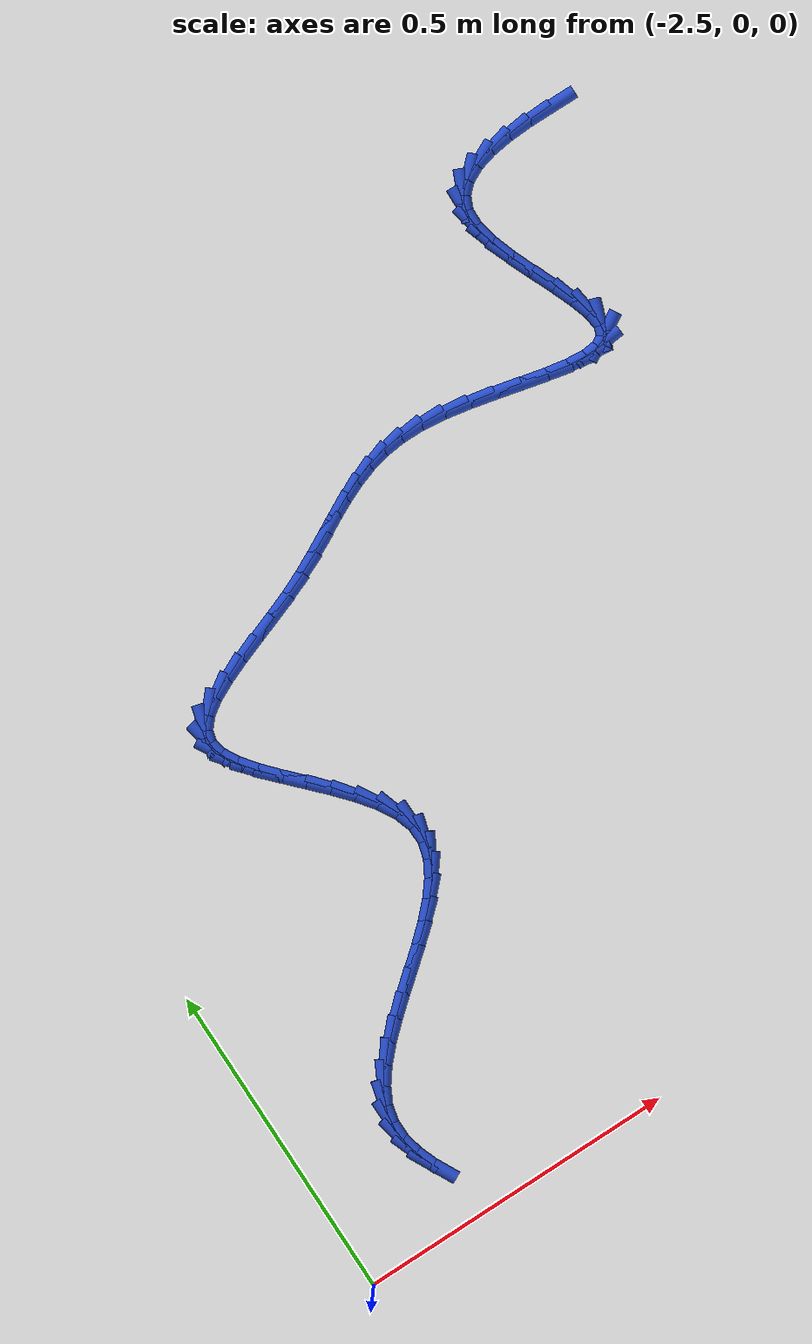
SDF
<sdf version="1.6">
 <world name="default">
  <model name="ground_plane">
   <static>1</static>
   <link name="link">
    <collision name="collision">
     <geometry><plane><normal>0 0 1</normal><size>100 100</size></plane></geometry>
     <surface><friction><ode><mu>100</mu><mu2>50</mu2></ode></friction></surface>
    </collision>
    <visual name="visual">
     <cast_shadows>0</cast_shadows>
     <geometry><plane><normal>0 0 1</normal><size>100 100</size></plane></geometry>
     <material>
      <script><uri>file://media/materials/scripts/gazebo.material</uri><name>Gazebo/WhiteGlow</name></script>
     </material>
    </visual>
   </link>
  </model>
  <model name="line">
   <link name="link_75">
    <pose>-1.3373898051731816 1.3048391775590995 0.01 0 1.57 -0.01315797995251754</pose>
    <collision name="collision">
     <geometry><cylinder><radius>0.01</radius><length>0.08</length></cylinder></geometry>
    </collision>
    <visual name="visual">
     <material>
      <script><name>Gazebo/Blue</name><uri>file://media/materials/scripts/gazebo.material</uri></script>
     </material>
     <geometry><cylinder><radius>0.01</radius><length>0.08</length></cylinder></geometry>
    </visual>
   </link>
   <link name="link_76">
    <pose>-1.3767139139469038 1.305356633257128 0.01 0 1.57 0.04234224604674094</pose>
    <collision name="collision">
     <geometry><cylinder><radius>0.01</radius><length>0.08</length></cylinder></geometry>
    </collision>
    <visual name="visual">
     <material>
      <script><name>Gazebo/Blue</name><uri>file://media/materials/scripts/gazebo.material</uri></script>
     </material>
     <geometry><cylinder><radius>0.01</radius><length>0.08</length></cylinder></geometry>
    </visual>
   </link>
   <link name="link_77">
    <pose>-1.413560351946312 1.3037955392578684 0.01 0 1.57 0.12639140691439146</pose>
    <collision name="collision">
     <geometry><cylinder><radius>0.01</radius><length>0.08</length></cylinder></geometry>
    </collision>
    <visual name="visual">
     <material>
      <script><name>Gazebo/Blue</name><uri>file://media/materials/scripts/gazebo.material</uri></script>
     </material>
     <geometry><cylinder><radius>0.01</radius><length>0.08</length></cylinder></geometry>
    </visual>
   </link>
   <link name="link_78">
    <pose>-1.4469092285463092 1.2995579388350074 0.01 0 1.57 0.25488432973484554</pose>
    <collision name="collision">
     <geometry><cylinder><radius>0.01</radius><length>0.08</length></cylinder></geometry>
    </collision>
    <visual name="visual">
     <material>
      <script><name>Gazebo/Blue</name><uri>file://media/materials/scripts/gazebo.material</uri></script>
     </material>
     <geometry><cylinder><radius>0.01</radius><length>0.08</length></cylinder></geometry>
    </visual>
   </link>
   <link name="link_79">
    <pose>-1.4757406531217967 1.2920458752622328 0.01 0 1.57 0.454589877610765</pose>
    <collision name="collision">
     <geometry><cylinder><radius>0.01</radius><length>0.08</length></cylinder></geometry>
    </collision>
    <visual name="visual">
     <material>
      <script><name>Gazebo/Blue</name><uri>file://media/materials/scripts/gazebo.material</uri></script>
     </material>
     <geometry><cylinder><radius>0.01</radius><length>0.08</length></cylinder></geometry>
    </visual>
   </link>
   <link name="link_80">
    <pose>-1.499034735047679 1.2806613918132324 0.01 0 1.57 0.7583430188637666</pose>
    <collision name="collision">
     <geometry><cylinder><radius>0.01</radius><length>0.08</length></cylinder></geometry>
    </collision>
    <visual name="visual">
     <material>
      <script><name>Gazebo/Blue</name><uri>file://media/materials/scripts/gazebo.material</uri></script>
     </material>
     <geometry><cylinder><radius>0.01</radius><length>0.08</length></cylinder></geometry>
    </visual>
   </link>
   <link name="link_81">
    <pose>-1.515771583698859 1.2648065317616932 0.01 0 1.57 1.1581521301465278</pose>
    <collision name="collision">
     <geometry><cylinder><radius>0.01</radius><length>0.08</length></cylinder></geometry>
    </collision>
    <visual name="visual">
     <material>
      <script><name>Gazebo/Blue</name><uri>file://media/materials/scripts/gazebo.material</uri></script>
     </material>
     <geometry><cylinder><radius>0.01</radius><length>0.08</length></cylinder></geometry>
    </visual>
   </link>
   <link name="link_82">
    <pose>-1.5249313084502394 1.243883338381302 0.01 0 1.57 1.5434661027120598</pose>
    <collision name="collision">
     <geometry><cylinder><radius>0.01</radius><length>0.08</length></cylinder></geometry>
    </collision>
    <visual name="visual">
     <material>
      <script><name>Gazebo/Blue</name><uri>file://media/materials/scripts/gazebo.material</uri></script>
     </material>
     <geometry><cylinder><radius>0.01</radius><length>0.08</length></cylinder></geometry>
    </visual>
   </link>
   <link name="link_83">
    <pose>-1.5256550989267372 1.2174067805711528 0.01 0 1.57 -1.3600200276536794</pose>
    <collision name="collision">
     <geometry><cylinder><radius>0.01</radius><length>0.08</length></cylinder></geometry>
    </collision>
    <visual name="visual">
     <material>
      <script><name>Gazebo/Blue</name><uri>file://media/materials/scripts/gazebo.material</uri></script>
     </material>
     <geometry><cylinder><radius>0.01</radius><length>0.08</length></cylinder></geometry>
    </visual>
   </link>
   <link name="link_84">
    <pose>-1.5189832409724269 1.1862231923619113 0.01 0 1.57 -1.2386243153492944</pose>
    <collision name="collision">
     <geometry><cylinder><radius>0.01</radius><length>0.08</length></cylinder></geometry>
    </collision>
    <visual name="visual">
     <material>
      <script><name>Gazebo/Blue</name><uri>file://media/materials/scripts/gazebo.material</uri></script>
     </material>
     <geometry><cylinder><radius>0.01</radius><length>0.08</length></cylinder></geometry>
    </visual>
   </link>
   <link name="link_85">
    <pose>-1.5071939640866625 1.1520467706133433 0.01 0 1.57 -1.179845868983129</pose>
    <collision name="collision">
     <geometry><cylinder><radius>0.01</radius><length>0.08</length></cylinder></geometry>
    </collision>
    <visual name="visual">
     <material>
      <script><name>Gazebo/Blue</name><uri>file://media/materials/scripts/gazebo.material</uri></script>
     </material>
     <geometry><cylinder><radius>0.01</radius><length>0.08</length></cylinder></geometry>
    </visual>
   </link>
   <link name="link_86">
    <pose>-1.4925867092561826 1.1166065825400753 0.01 0 1.57 -1.16261070078067</pose>
    <collision name="collision">
     <geometry><cylinder><radius>0.01</radius><length>0.08</length></cylinder></geometry>
    </collision>
    <visual name="visual">
     <material>
      <script><name>Gazebo/Blue</name><uri>file://media/materials/scripts/gazebo.material</uri></script>
     </material>
     <geometry><cylinder><radius>0.01</radius><length>0.08</length></cylinder></geometry>
    </visual>
   </link>
   <link name="link_87">
    <pose>-1.4774609174677245 1.0816316953567322 0.01 0 1.57 -1.1841858953278552</pose>
    <collision name="collision">
     <geometry><cylinder><radius>0.01</radius><length>0.08</length></cylinder></geometry>
    </collision>
    <visual name="visual">
     <material>
      <script><name>Gazebo/Blue</name><uri>file://media/materials/scripts/gazebo.material</uri></script>
     </material>
     <geometry><cylinder><radius>0.01</radius><length>0.08</length></cylinder></geometry>
    </visual>
   </link>
   <link name="link_88">
    <pose>-1.4641160297080256 1.0488511762779409 0.01 0 1.57 -1.2601419592809815</pose>
    <collision name="collision">
     <geometry><cylinder><radius>0.01</radius><length>0.08</length></cylinder></geometry>
    </collision>
    <visual name="visual">
     <material>
      <script><name>Gazebo/Blue</name><uri>file://media/materials/scripts/gazebo.material</uri></script>
     </material>
     <geometry><cylinder><radius>0.01</radius><length>0.08</length></cylinder></geometry>
    </visual>
   </link>
   <link name="link_89">
    <pose>-1.4548514869638234 1.0199940925183257 0.01 0 1.57 -1.4471124882371735</pose>
    <collision name="collision">
     <geometry><cylinder><radius>0.01</radius><length>0.08</length></cylinder></geometry>
    </collision>
    <visual name="visual">
     <material>
      <script><name>Gazebo/Blue</name><uri>file://media/materials/scripts/gazebo.material</uri></script>
     </material>
     <geometry><cylinder><radius>0.01</radius><length>0.08</length></cylinder></geometry>
    </visual>
   </link>
   <link name="link_90">
    <pose>-1.4519667302218549 0.9967895112925125 0.01 0 1.57 1.225573483149632</pose>
    <collision name="collision">
     <geometry><cylinder><radius>0.01</radius><length>0.08</length></cylinder></geometry>
    </collision>
    <visual name="visual">
     <material>
      <script><name>Gazebo/Blue</name><uri>file://media/materials/scripts/gazebo.material</uri></script>
     </material>
     <geometry><cylinder><radius>0.01</radius><length>0.08</length></cylinder></geometry>
    </visual>
   </link>
   <link name="link_91">
    <pose>-1.4576809671862658 0.9809000433505993 0.01 0 1.57 0.5170347029312008</pose>
    <collision name="collision">
     <geometry><cylinder><radius>0.01</radius><length>0.08</length></cylinder></geometry>
    </collision>
    <visual name="visual">
     <material>
      <script><name>Gazebo/Blue</name><uri>file://media/materials/scripts/gazebo.material</uri></script>
     </material>
     <geometry><cylinder><radius>0.01</radius><length>0.08</length></cylinder></geometry>
    </visual>
   </link>
   <link name="link_92">
    <pose>-1.4724315485109156 0.9725124042028388 0.01 0 1.57 0.09520201269867072</pose>
    <collision name="collision">
     <geometry><cylinder><radius>0.01</radius><length>0.08</length></cylinder></geometry>
    </collision>
    <visual name="visual">
     <material>
      <script><name>Gazebo/Blue</name><uri>file://media/materials/scripts/gazebo.material</uri></script>
     </material>
     <geometry><cylinder><radius>0.01</radius><length>0.08</length></cylinder></geometry>
    </visual>
   </link>
   <link name="link_93">
    <pose>-1.4949085520183283 0.9703660598991153 0.01 0 1.57 -0.09594571729624421</pose>
    <collision name="collision">
     <geometry><cylinder><radius>0.01</radius><length>0.08</length></cylinder></geometry>
    </collision>
    <visual name="visual">
     <material>
      <script><name>Gazebo/Blue</name><uri>file://media/materials/scripts/gazebo.material</uri></script>
     </material>
     <geometry><cylinder><radius>0.01</radius><length>0.08</length></cylinder></geometry>
    </visual>
   </link>
   <link name="link_94">
    <pose>-1.5237287399252064 0.9731397498706305 0.01 0 1.57 -0.18645412499702016</pose>
    <collision name="collision">
     <geometry><cylinder><radius>0.01</radius><length>0.08</length></cylinder></geometry>
    </collision>
    <visual name="visual">
     <material>
      <script><name>Gazebo/Blue</name><uri>file://media/materials/scripts/gazebo.material</uri></script>
     </material>
     <geometry><cylinder><radius>0.01</radius><length>0.08</length></cylinder></geometry>
    </visual>
   </link>
   <link name="link_95">
    <pose>-1.5575088744482528 0.9795122135485858 0.01 0 1.57 -0.2275400065699741</pose>
    <collision name="collision">
     <geometry><cylinder><radius>0.01</radius><length>0.08</length></cylinder></geometry>
    </collision>
    <visual name="visual">
     <material>
      <script><name>Gazebo/Blue</name><uri>file://media/materials/scripts/gazebo.material</uri></script>
     </material>
     <geometry><cylinder><radius>0.01</radius><length>0.08</length></cylinder></geometry>
    </visual>
   </link>
   <link name="link_96">
    <pose>-1.5948657178041665 0.9881621903641817 0.01 0 1.57 -0.23827228776778817</pose>
    <collision name="collision">
     <geometry><cylinder><radius>0.01</radius><length>0.08</length></cylinder></geometry>
    </collision>
    <visual name="visual">
     <material>
      <script><name>Gazebo/Blue</name><uri>file://media/materials/scripts/gazebo.material</uri></script>
     </material>
     <geometry><cylinder><radius>0.01</radius><length>0.08</length></cylinder></geometry>
    </visual>
   </link>
   <link name="link_97">
    <pose>-1.634416032209652 0.9977684197486206 0.01 0 1.57 -0.22508678138082222</pose>
    <collision name="collision">
     <geometry><cylinder><radius>0.01</radius><length>0.08</length></cylinder></geometry>
    </collision>
    <visual name="visual">
     <material>
      <script><name>Gazebo/Blue</name><uri>file://media/materials/scripts/gazebo.material</uri></script>
     </material>
     <geometry><cylinder><radius>0.01</radius><length>0.08</length></cylinder></geometry>
    </visual>
   </link>
   <link name="link_98">
    <pose>-1.6747765798814092 1.007009641133103 0.01 0 1.57 -0.18764840830807814</pose>
    <collision name="collision">
     <geometry><cylinder><radius>0.01</radius><length>0.08</length></cylinder></geometry>
    </collision>
    <visual name="visual">
     <material>
      <script><name>Gazebo/Blue</name><uri>file://media/materials/scripts/gazebo.material</uri></script>
     </material>
     <geometry><cylinder><radius>0.01</radius><length>0.08</length></cylinder></geometry>
    </visual>
   </link>
   <link name="link_99">
    <pose>-1.7145641230361404 1.014564593948831 0.01 0 1.57 -0.1196287221775573</pose>
    <collision name="collision">
     <geometry><cylinder><radius>0.01</radius><length>0.08</length></cylinder></geometry>
    </collision>
    <visual name="visual">
     <material>
      <script><name>Gazebo/Blue</name><uri>file://media/materials/scripts/gazebo.material</uri></script>
     </material>
     <geometry><cylinder><radius>0.01</radius><length>0.08</length></cylinder></geometry>
    </visual>
   </link>
   <link name="link_100">
    <pose>-1.7523954238905484 1.0191120176270052 0.01 0 1.57 -0.013289082040959339</pose>
    <collision name="collision">
     <geometry><cylinder><radius>0.01</radius><length>0.08</length></cylinder></geometry>
    </collision>
    <visual name="visual">
     <material>
      <script><name>Gazebo/Blue</name><uri>file://media/materials/scripts/gazebo.material</uri></script>
     </material>
     <geometry><cylinder><radius>0.01</radius><length>0.08</length></cylinder></geometry>
    </visual>
   </link>
   <link name="link_101">
    <pose>-1.7871519560728155 1.0195739272259872 0.01 0 1.57 0.10790826556473448</pose>
    <collision name="collision">
     <geometry><cylinder><radius>0.01</radius><length>0.08</length></cylinder></geometry>
    </collision>
    <visual name="visual">
     <material>
      <script><name>Gazebo/Blue</name><uri>file://media/materials/scripts/gazebo.material</uri></script>
     </material>
     <geometry><cylinder><radius>0.01</radius><length>0.08</length></cylinder></geometry>
    </visual>
   </link>
   <link name="link_102">
    <pose>-1.8190688712536627 1.016116397789788 0.01 0 1.57 0.22521080983518865</pose>
    <collision name="collision">
     <geometry><cylinder><radius>0.01</radius><length>0.08</length></cylinder></geometry>
    </collision>
    <visual name="visual">
     <material>
      <script><name>Gazebo/Blue</name><uri>file://media/materials/scripts/gazebo.material</uri></script>
     </material>
     <geometry><cylinder><radius>0.01</radius><length>0.08</length></cylinder></geometry>
    </visual>
   </link>
   <link name="link_103">
    <pose>-1.8488128897158085 1.0093021254380234 0.01 0 1.57 0.3279676586462446</pose>
    <collision name="collision">
     <geometry><cylinder><radius>0.01</radius><length>0.08</length></cylinder></geometry>
    </collision>
    <visual name="visual">
     <material>
      <script><name>Gazebo/Blue</name><uri>file://media/materials/scripts/gazebo.material</uri></script>
     </material>
     <geometry><cylinder><radius>0.01</radius><length>0.08</length></cylinder></geometry>
    </visual>
   </link>
   <link name="link_104">
    <pose>-1.877050917183874 0.9996939767155072 0.01 0 1.57 0.4078713341601084</pose>
    <collision name="collision">
     <geometry><cylinder><radius>0.01</radius><length>0.08</length></cylinder></geometry>
    </collision>
    <visual name="visual">
     <material>
      <script><name>Gazebo/Blue</name><uri>file://media/materials/scripts/gazebo.material</uri></script>
     </material>
     <geometry><cylinder><radius>0.01</radius><length>0.08</length></cylinder></geometry>
    </visual>
   </link>
   <link name="link_105">
    <pose>-1.9044498593824788 0.9878548181670527 0.01 0 1.57 0.46052583555647414</pose>
    <collision name="collision">
     <geometry><cylinder><radius>0.01</radius><length>0.08</length></cylinder></geometry>
    </collision>
    <visual name="visual">
     <material>
      <script><name>Gazebo/Blue</name><uri>file://media/materials/scripts/gazebo.material</uri></script>
     </material>
     <geometry><cylinder><radius>0.01</radius><length>0.08</length></cylinder></geometry>
    </visual>
   </link>
   <link name="link_106">
    <pose>-1.9316766220362447 0.9743475163374739 0.01 0 1.57 0.48510825436830396</pose>
    <collision name="collision">
     <geometry><cylinder><radius>0.01</radius><length>0.08</length></cylinder></geometry>
    </collision>
    <visual name="visual">
     <material>
      <script><name>Gazebo/Blue</name><uri>file://media/materials/scripts/gazebo.material</uri></script>
     </material>
     <geometry><cylinder><radius>0.01</radius><length>0.08</length></cylinder></geometry>
    </visual>
   </link>
   <link name="link_107">
    <pose>-1.9593981108697909 0.9597349377715843 0.01 0 1.57 0.48321220923117686</pose>
    <collision name="collision">
     <geometry><cylinder><radius>0.01</radius><length>0.08</length></cylinder></geometry>
    </collision>
    <visual name="visual">
     <material>
      <script><name>Gazebo/Blue</name><uri>file://media/materials/scripts/gazebo.material</uri></script>
     </material>
     <geometry><cylinder><radius>0.01</radius><length>0.08</length></cylinder></geometry>
    </visual>
   </link>
   <link name="link_108">
    <pose>-1.9882812316077378 0.9445799490141974 0.01 0 1.57 0.457866508393324</pose>
    <collision name="collision">
     <geometry><cylinder><radius>0.01</radius><length>0.08</length></cylinder></geometry>
    </collision>
    <visual name="visual">
     <material>
      <script><name>Gazebo/Blue</name><uri>file://media/materials/scripts/gazebo.material</uri></script>
     </material>
     <geometry><cylinder><radius>0.01</radius><length>0.08</length></cylinder></geometry>
    </visual>
   </link>
   <link name="link_109">
    <pose>-2.0189928899747076 0.9294454166101267 0.01 0 1.57 0.41302848601677045</pose>
    <collision name="collision">
     <geometry><cylinder><radius>0.01</radius><length>0.08</length></cylinder></geometry>
    </collision>
    <visual name="visual">
     <material>
      <script><name>Gazebo/Blue</name><uri>file://media/materials/scripts/gazebo.material</uri></script>
     </material>
     <geometry><cylinder><radius>0.01</radius><length>0.08</length></cylinder></geometry>
    </visual>
   </link>
   <link name="link_110">
    <pose>-2.0521983956105654 0.914893550670327 0.01 0 1.57 0.36520697865366364</pose>
    <collision name="collision">
     <geometry><cylinder><radius>0.01</radius><length>0.08</length></cylinder></geometry>
    </collision>
    <visual name="visual">
     <material>
      <script><name>Gazebo/Blue</name><uri>file://media/materials/scripts/gazebo.material</uri></script>
     </material>
     <geometry><cylinder><radius>0.01</radius><length>0.08</length></cylinder></geometry>
    </visual>
   </link>
   <link name="link_111">
    <pose>-2.0879363524221697 0.9012288112944581 0.01 0 1.57 0.3430952337901115</pose>
    <collision name="collision">
     <geometry><cylinder><radius>0.01</radius><length>0.08</length></cylinder></geometry>
    </collision>
    <visual name="visual">
     <material>
      <script><name>Gazebo/Blue</name><uri>file://media/materials/scripts/gazebo.material</uri></script>
     </material>
     <geometry><cylinder><radius>0.01</radius><length>0.08</length></cylinder></geometry>
    </visual>
   </link>
   <link name="link_112">
    <pose>-2.1246686361655125 0.8881071856589481 0.01 0 1.57 0.3475959848527559</pose>
    <collision name="collision">
     <geometry><cylinder><radius>0.01</radius><length>0.08</length></cylinder></geometry>
    </collision>
    <visual name="visual">
     <material>
      <script><name>Gazebo/Blue</name><uri>file://media/materials/scripts/gazebo.material</uri></script>
     </material>
     <geometry><cylinder><radius>0.01</radius><length>0.08</length></cylinder></geometry>
    </visual>
   </link>
   <link name="link_113">
    <pose>-2.160613063136322 0.8750842847583479 0.01 0 1.57 0.38099216460042595</pose>
    <collision name="collision">
     <geometry><cylinder><radius>0.01</radius><length>0.08</length></cylinder></geometry>
    </collision>
    <visual name="visual">
     <material>
      <script><name>Gazebo/Blue</name><uri>file://media/materials/scripts/gazebo.material</uri></script>
     </material>
     <geometry><cylinder><radius>0.01</radius><length>0.08</length></cylinder></geometry>
    </visual>
   </link>
   <link name="link_114">
    <pose>-2.193987449630325 0.8617157195872092 0.01 0 1.57 0.45388480720207564</pose>
    <collision name="collision">
     <geometry><cylinder><radius>0.01</radius><length>0.08</length></cylinder></geometry>
    </collision>
    <visual name="visual">
     <material>
      <script><name>Gazebo/Blue</name><uri>file://media/materials/scripts/gazebo.material</uri></script>
     </material>
     <geometry><cylinder><radius>0.01</radius><length>0.08</length></cylinder></geometry>
    </visual>
   </link>
   <link name="link_115">
    <pose>-2.223009611943248 0.8475571011400824 0.01 0 1.57 0.5920616644923312</pose>
    <collision name="collision">
     <geometry><cylinder><radius>0.01</radius><length>0.08</length></cylinder></geometry>
    </collision>
    <visual name="visual">
     <material>
      <script><name>Gazebo/Blue</name><uri>file://media/materials/scripts/gazebo.material</uri></script>
     </material>
     <geometry><cylinder><radius>0.01</radius><length>0.08</length></cylinder></geometry>
    </visual>
   </link>
   <link name="link_116">
    <pose>-2.245897366370818 0.8321640404115186 0.01 0 1.57 0.850864057311135</pose>
    <collision name="collision">
     <geometry><cylinder><radius>0.01</radius><length>0.08</length></cylinder></geometry>
    </collision>
    <visual name="visual">
     <material>
      <script><name>Gazebo/Blue</name><uri>file://media/materials/scripts/gazebo.material</uri></script>
     </material>
     <geometry><cylinder><radius>0.01</radius><length>0.08</length></cylinder></geometry>
    </visual>
   </link>
   <link name="link_117">
    <pose>-2.260868529208762 0.8150921483960685 0.01 0 1.57 1.3012212081045818</pose>
    <collision name="collision">
     <geometry><cylinder><radius>0.01</radius><length>0.08</length></cylinder></geometry>
    </collision>
    <visual name="visual">
     <material>
      <script><name>Gazebo/Blue</name><uri>file://media/materials/scripts/gazebo.material</uri></script>
     </material>
     <geometry><cylinder><radius>0.01</radius><length>0.08</length></cylinder></geometry>
    </visual>
   </link>
   <link name="link_118">
    <pose>-2.266170465836059 0.7959031438461229 0.01 0 1.57 -1.356261590375555</pose>
    <collision name="collision">
     <geometry><cylinder><radius>0.01</radius><length>0.08</length></cylinder></geometry>
    </collision>
    <visual name="visual">
     <material>
      <script><name>Gazebo/Blue</name><uri>file://media/materials/scripts/gazebo.material</uri></script>
     </material>
     <geometry><cylinder><radius>0.01</radius><length>0.08</length></cylinder></geometry>
    </visual>
   </link>
   <link name="link_119">
    <pose>-2.261497807157412 0.7744578934532613 0.01 0 1.57 -1.0678767614293265</pose>
    <collision name="collision">
     <geometry><cylinder><radius>0.01</radius><length>0.08</length></cylinder></geometry>
    </collision>
    <visual name="visual">
     <material>
      <script><name>Gazebo/Blue</name><uri>file://media/materials/scripts/gazebo.material</uri></script>
     </material>
     <geometry><cylinder><radius>0.01</radius><length>0.08</length></cylinder></geometry>
    </visual>
   </link>
   <link name="link_120">
    <pose>-2.248618879001726 0.7510458940063465 0.01 0 1.57 -0.9180424707355475</pose>
    <collision name="collision">
     <geometry><cylinder><radius>0.01</radius><length>0.08</length></cylinder></geometry>
    </collision>
    <visual name="visual">
     <material>
      <script><name>Gazebo/Blue</name><uri>file://media/materials/scripts/gazebo.material</uri></script>
     </material>
     <geometry><cylinder><radius>0.01</radius><length>0.08</length></cylinder></geometry>
    </visual>
   </link>
   <link name="link_121">
    <pose>-2.2294619446309722 0.725989701157767 0.01 0 1.57 -0.8428907450110102</pose>
    <collision name="collision">
     <geometry><cylinder><radius>0.01</radius><length>0.08</length></cylinder></geometry>
    </collision>
    <visual name="visual">
     <material>
      <script><name>Gazebo/Blue</name><uri>file://media/materials/scripts/gazebo.material</uri></script>
     </material>
     <geometry><cylinder><radius>0.01</radius><length>0.08</length></cylinder></geometry>
    </visual>
   </link>
   <link name="link_122">
    <pose>-2.2059552673071194 0.6996118705599105 0.01 0 1.57 -0.812570046407934</pose>
    <collision name="collision">
     <geometry><cylinder><radius>0.01</radius><length>0.08</length></cylinder></geometry>
    </collision>
    <visual name="visual">
     <material>
      <script><name>Gazebo/Blue</name><uri>file://media/materials/scripts/gazebo.material</uri></script>
     </material>
     <geometry><cylinder><radius>0.01</radius><length>0.08</length></cylinder></geometry>
    </visual>
   </link>
   <link name="link_123">
    <pose>-2.180027110292139 0.6722349578651667 0.01 0 1.57 -0.8153492098616334</pose>
    <collision name="collision">
     <geometry><cylinder><radius>0.01</radius><length>0.08</length></cylinder></geometry>
    </collision>
    <visual name="visual">
     <material>
      <script><name>Gazebo/Blue</name><uri>file://media/materials/scripts/gazebo.material</uri></script>
     </material>
     <geometry><cylinder><radius>0.01</radius><length>0.08</length></cylinder></geometry>
    </visual>
   </link>
   <link name="link_124">
    <pose>-2.153605736848001 0.6441815187259233 0.01 0 1.57 -0.8493834451080302</pose>
    <collision name="collision">
     <geometry><cylinder><radius>0.01</radius><length>0.08</length></cylinder></geometry>
    </collision>
    <visual name="visual">
     <material>
      <script><name>Gazebo/Blue</name><uri>file://media/materials/scripts/gazebo.material</uri></script>
     </material>
     <geometry><cylinder><radius>0.01</radius><length>0.08</length></cylinder></geometry>
    </visual>
   </link>
   <link name="link_125">
    <pose>-2.128619410236674 0.6157741087945688 0.01 0 1.57 -0.9207139546901273</pose>
    <collision name="collision">
     <geometry><cylinder><radius>0.01</radius><length>0.08</length></cylinder></geometry>
    </collision>
    <visual name="visual">
     <material>
      <script><name>Gazebo/Blue</name><uri>file://media/materials/scripts/gazebo.material</uri></script>
     </material>
     <geometry><cylinder><radius>0.01</radius><length>0.08</length></cylinder></geometry>
    </visual>
   </link>
   <link name="link_126">
    <pose>-2.1069963937201286 0.5873352837234911 0.01 0 1.57 -1.0450587286731583</pose>
    <collision name="collision">
     <geometry><cylinder><radius>0.01</radius><length>0.08</length></cylinder></geometry>
    </collision>
    <visual name="visual">
     <material>
      <script><name>Gazebo/Blue</name><uri>file://media/materials/scripts/gazebo.material</uri></script>
     </material>
     <geometry><cylinder><radius>0.01</radius><length>0.08</length></cylinder></geometry>
    </visual>
   </link>
   <link name="link_127">
    <pose>-2.0906649505603356 0.5591875991650794 0.01 0 1.57 -1.2512174079949492</pose>
    <collision name="collision">
     <geometry><cylinder><radius>0.01</radius><length>0.08</length></cylinder></geometry>
    </collision>
    <visual name="visual">
     <material>
      <script><name>Gazebo/Blue</name><uri>file://media/materials/scripts/gazebo.material</uri></script>
     </material>
     <geometry><cylinder><radius>0.01</radius><length>0.08</length></cylinder></geometry>
    </visual>
   </link>
   <link name="link_128">
    <pose>-2.081553344019264 0.5316536107717219 0.01 0 1.57 -1.5527998504077827</pose>
    <collision name="collision">
     <geometry><cylinder><radius>0.01</radius><length>0.08</length></cylinder></geometry>
    </collision>
    <visual name="visual">
     <material>
      <script><name>Gazebo/Blue</name><uri>file://media/materials/scripts/gazebo.material</uri></script>
     </material>
     <geometry><cylinder><radius>0.01</radius><length>0.08</length></cylinder></geometry>
    </visual>
   </link>
   <link name="link_129">
    <pose>-2.081073294779245 0.5049818666172903 0.01 0 1.57 1.290205440004835</pose>
    <collision name="collision">
     <geometry><cylinder><radius>0.01</radius><length>0.08</length></cylinder></geometry>
    </collision>
    <visual name="visual">
     <material>
      <script><name>Gazebo/Blue</name><uri>file://media/materials/scripts/gazebo.material</uri></script>
     </material>
     <geometry><cylinder><radius>0.01</radius><length>0.08</length></cylinder></geometry>
    </visual>
   </link>
   <link name="link_130">
    <pose>-2.088526919957551 0.47911866156820865 0.01 0 1.57 1.058887363317217</pose>
    <collision name="collision">
     <geometry><cylinder><radius>0.01</radius><length>0.08</length></cylinder></geometry>
    </collision>
    <visual name="visual">
     <material>
      <script><name>Gazebo/Blue</name><uri>file://media/materials/scripts/gazebo.material</uri></script>
     </material>
     <geometry><cylinder><radius>0.01</radius><length>0.08</length></cylinder></geometry>
    </visual>
   </link>
   <link name="link_131">
    <pose>-2.102677850186363 0.4539331389018616 0.01 0 1.57 0.8985125166918039</pose>
    <collision name="collision">
     <geometry><cylinder><radius>0.01</radius><length>0.08</length></cylinder></geometry>
    </collision>
    <visual name="visual">
     <material>
      <script><name>Gazebo/Blue</name><uri>file://media/materials/scripts/gazebo.material</uri></script>
     </material>
     <geometry><cylinder><radius>0.01</radius><length>0.08</length></cylinder></geometry>
    </visual>
   </link>
   <link name="link_132">
    <pose>-2.1222897159220038 0.42929444187043864 0.01 0 1.57 0.7934359261833769</pose>
    <collision name="collision">
     <geometry><cylinder><radius>0.01</radius><length>0.08</length></cylinder></geometry>
    </collision>
    <visual name="visual">
     <material>
      <script><name>Gazebo/Blue</name><uri>file://media/materials/scripts/gazebo.material</uri></script>
     </material>
     <geometry><cylinder><radius>0.01</radius><length>0.08</length></cylinder></geometry>
    </visual>
   </link>
   <link name="link_133">
    <pose>-2.1461261476207936 0.405071713726128 0.01 0 1.57 0.7285861479023827</pose>
    <collision name="collision">
     <geometry><cylinder><radius>0.01</radius><length>0.08</length></cylinder></geometry>
    </collision>
    <visual name="visual">
     <material>
      <script><name>Gazebo/Blue</name><uri>file://media/materials/scripts/gazebo.material</uri></script>
     </material>
     <geometry><cylinder><radius>0.01</radius><length>0.08</length></cylinder></geometry>
    </visual>
   </link>
   <link name="link_134">
    <pose>-2.1729507757390545 0.3811340977211185 0.01 0 1.57 0.6941111184490445</pose>
    <collision name="collision">
     <geometry><cylinder><radius>0.01</radius><length>0.08</length></cylinder></geometry>
    </collision>
    <visual name="visual">
     <material>
      <script><name>Gazebo/Blue</name><uri>file://media/materials/scripts/gazebo.material</uri></script>
     </material>
     <geometry><cylinder><radius>0.01</radius><length>0.08</length></cylinder></geometry>
    </visual>
   </link>
   <link name="link_135">
    <pose>-2.201527230733108 0.3573507371075984 0.01 0 1.57 0.6848535559744777</pose>
    <collision name="collision">
     <geometry><cylinder><radius>0.01</radius><length>0.08</length></cylinder></geometry>
    </collision>
    <visual name="visual">
     <material>
      <script><name>Gazebo/Blue</name><uri>file://media/materials/scripts/gazebo.material</uri></script>
     </material>
     <geometry><cylinder><radius>0.01</radius><length>0.08</length></cylinder></geometry>
    </visual>
   </link>
   <link name="link_136">
    <pose>-2.2306191430592768 0.33359077513775715 0.01 0 1.57 0.6993987805745856</pose>
    <collision name="collision">
     <geometry><cylinder><radius>0.01</radius><length>0.08</length></cylinder></geometry>
    </collision>
    <visual name="visual">
     <material>
      <script><name>Gazebo/Blue</name><uri>file://media/materials/scripts/gazebo.material</uri></script>
     </material>
     <geometry><cylinder><radius>0.01</radius><length>0.08</length></cylinder></geometry>
    </visual>
   </link>
   <link name="link_137">
    <pose>-2.2589901431738806 0.3097233550637831 0.01 0 1.57 0.7397448633460757</pose>
    <collision name="collision">
     <geometry><cylinder><radius>0.01</radius><length>0.08</length></cylinder></geometry>
    </collision>
    <visual name="visual">
     <material>
      <script><name>Gazebo/Blue</name><uri>file://media/materials/scripts/gazebo.material</uri></script>
     </material>
     <geometry><cylinder><radius>0.01</radius><length>0.08</length></cylinder></geometry>
    </visual>
   </link>
   <link name="link_138">
    <pose>-2.285403861533242 0.285617620137865 0.01 0 1.57 0.8117017748290783</pose>
    <collision name="collision">
     <geometry><cylinder><radius>0.01</radius><length>0.08</length></cylinder></geometry>
    </collision>
    <visual name="visual">
     <material>
      <script><name>Gazebo/Blue</name><uri>file://media/materials/scripts/gazebo.material</uri></script>
     </material>
     <geometry><cylinder><radius>0.01</radius><length>0.08</length></cylinder></geometry>
    </visual>
   </link>
   <link name="link_139">
    <pose>-2.3086239285936827 0.2611427136121916 0.01 0 1.57 0.9257889771544738</pose>
    <collision name="collision">
     <geometry><cylinder><radius>0.01</radius><length>0.08</length></cylinder></geometry>
    </collision>
    <visual name="visual">
     <material>
      <script><name>Gazebo/Blue</name><uri>file://media/materials/scripts/gazebo.material</uri></script>
     </material>
     <geometry><cylinder><radius>0.01</radius><length>0.08</length></cylinder></geometry>
    </visual>
   </link>
   <link name="link_140">
    <pose>-2.3274139748115252 0.23616777873895117 0.01 0 1.57 1.0971779788924918</pose>
    <collision name="collision">
     <geometry><cylinder><radius>0.01</radius><length>0.08</length></cylinder></geometry>
    </collision>
    <visual name="visual">
     <material>
      <script><name>Gazebo/Blue</name><uri>file://media/materials/scripts/gazebo.material</uri></script>
     </material>
     <geometry><cylinder><radius>0.01</radius><length>0.08</length></cylinder></geometry>
    </visual>
   </link>
   <link name="link_141">
    <pose>-2.340537630643089 0.21056195877033324 0.01 0 1.57 1.333374415332726</pose>
    <collision name="collision">
     <geometry><cylinder><radius>0.01</radius><length>0.08</length></cylinder></geometry>
    </collision>
    <visual name="visual">
     <material>
      <script><name>Gazebo/Blue</name><uri>file://media/materials/scripts/gazebo.material</uri></script>
     </material>
     <geometry><cylinder><radius>0.01</radius><length>0.08</length></cylinder></geometry>
    </visual>
   </link>
   <link name="link_142">
    <pose>-2.346914369720552 0.18421026615934644 0.01 0 1.57 -1.5645448321498856</pose>
    <collision name="collision">
     <geometry><cylinder><radius>0.01</radius><length>0.08</length></cylinder></geometry>
    </collision>
    <visual name="visual">
     <material>
      <script><name>Gazebo/Blue</name><uri>file://media/materials/scripts/gazebo.material</uri></script>
     </material>
     <geometry><cylinder><radius>0.01</radius><length>0.08</length></cylinder></geometry>
    </visual>
   </link>
   <link name="link_143">
    <pose>-2.346745064095995 0.1571281956130022 0.01 0 1.57 -1.3616883642804232</pose>
    <collision name="collision">
     <geometry><cylinder><radius>0.01</radius><length>0.08</length></cylinder></geometry>
    </collision>
    <visual name="visual">
     <material>
      <script><name>Gazebo/Blue</name><uri>file://media/materials/scripts/gazebo.material</uri></script>
     </material>
     <geometry><cylinder><radius>0.01</radius><length>0.08</length></cylinder></geometry>
    </visual>
   </link>
   <link name="link_144">
    <pose>-2.3408598690333555 0.1293953204969188 0.01 0 1.57 -1.2073041594208704</pose>
    <collision name="collision">
     <geometry><cylinder><radius>0.01</radius><length>0.08</length></cylinder></geometry>
    </collision>
    <visual name="visual">
     <material>
      <script><name>Gazebo/Blue</name><uri>file://media/materials/scripts/gazebo.material</uri></script>
     </material>
     <geometry><cylinder><radius>0.01</radius><length>0.08</length></cylinder></geometry>
    </visual>
   </link>
   <link name="link_145">
    <pose>-2.3300932958249367 0.10109165774242446 0.01 0 1.57 -1.0956517086708588</pose>
    <collision name="collision">
     <geometry><cylinder><radius>0.01</radius><length>0.08</length></cylinder></geometry>
    </collision>
    <visual name="visual">
     <material>
      <script><name>Gazebo/Blue</name><uri>file://media/materials/scripts/gazebo.material</uri></script>
     </material>
     <geometry><cylinder><radius>0.01</radius><length>0.08</length></cylinder></geometry>
    </visual>
   </link>
  </model>
 </world>
</sdf>
